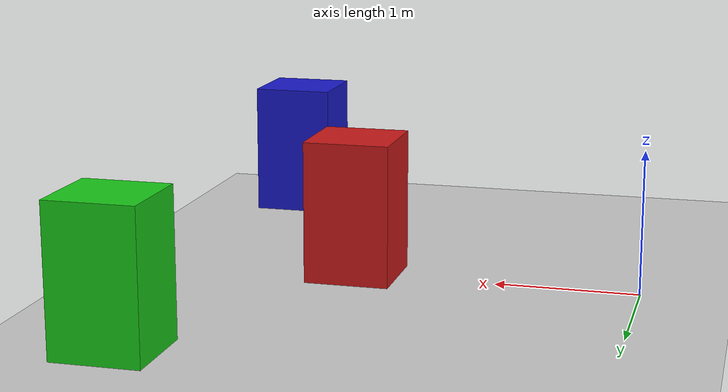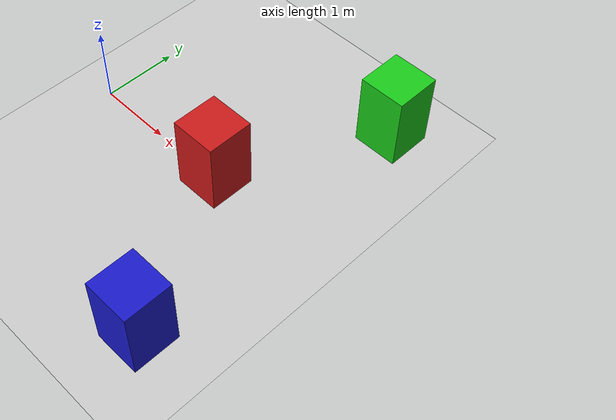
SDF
<?xml version="1.0" ?>
<sdf version="1.10">
  <world name="empty_world">

    <physics name="1ms" type="ignored">
      <max_step_size>0.001</max_step_size>
      <real_time_factor>1.0</real_time_factor>
    </physics>

    <plugin
      filename="gz-sim-physics-system"
      name="gz::sim::systems::Physics"/>

    <plugin
      filename="gz-sim-user-commands-system"
      name="gz::sim::systems::UserCommands"/>

    <plugin
      filename="gz-sim-scene-broadcaster-system"
      name="gz::sim::systems::SceneBroadcaster"/>

    <plugin
      filename="gz-sim-sensors-system"
      name="gz::sim::systems::Sensors">
      <render_engine>ogre2</render_engine>
    </plugin>

    <plugin
      filename="gz-sim-imu-system"
      name="gz::sim::systems::Imu"/>

    <light type="directional" name="sun">
      <cast_shadows>true</cast_shadows>
      <pose>0 0 10 0 0 0</pose>
      <diffuse>0.8 0.8 0.8 1</diffuse>
      <specular>0.2 0.2 0.2 1</specular>
      <direction>-0.5 0.1 -0.9</direction>
    </light>

    <model name="ground_plane">
      <static>true</static>
      <link name="link">
        <collision name="collision">
          <geometry>
            <plane>
              <normal>0 0 1</normal>
              <size>20 20</size>
            </plane>
          </geometry>
        </collision>
        <visual name="visual">
          <geometry>
            <plane>
              <normal>0 0 1</normal>
              <size>20 20</size>
            </plane>
          </geometry>
          <material>
            <ambient>0.8 0.8 0.8 1</ambient>
            <diffuse>0.8 0.8 0.8 1</diffuse>
          </material>
        </visual>
      </link>
    </model>

    <model name="box_front">
      <static>true</static>
      <pose>2.0 0.0 0.5 0 0 0</pose>
      <link name="link">
        <collision name="collision">
          <geometry>
            <box><size>0.6 0.6 1.0</size></box>
          </geometry>
        </collision>
        <visual name="visual">
          <geometry>
            <box><size>0.6 0.6 1.0</size></box>
          </geometry>
          <material>
            <ambient>0.8 0.1 0.1 1</ambient>
            <diffuse>0.8 0.1 0.1 1</diffuse>
          </material>
        </visual>
      </link>
    </model>

    <model name="box_left">
      <static>true</static>
      <pose>3.0 2.0 0.5 0 0 0</pose>
      <link name="link">
        <collision name="collision">
          <geometry>
            <box><size>0.6 0.6 1.0</size></box>
          </geometry>
        </collision>
        <visual name="visual">
          <geometry>
            <box><size>0.6 0.6 1.0</size></box>
          </geometry>
          <material>
            <ambient>0.1 0.8 0.1 1</ambient>
            <diffuse>0.1 0.8 0.1 1</diffuse>
          </material>
        </visual>
      </link>
    </model>

    <model name="box_right">
      <static>true</static>
      <pose>3.0 -2.0 0.5 0 0 0</pose>
      <link name="link">
        <collision name="collision">
          <geometry>
            <box><size>0.6 0.6 1.0</size></box>
          </geometry>
        </collision>
        <visual name="visual">
          <geometry>
            <box><size>0.6 0.6 1.0</size></box>
          </geometry>
          <material>
            <ambient>0.1 0.1 0.8 1</ambient>
            <diffuse>0.1 0.1 0.8 1</diffuse>
          </material>
        </visual>
      </link>
    </model>

  </world>
</sdf>
